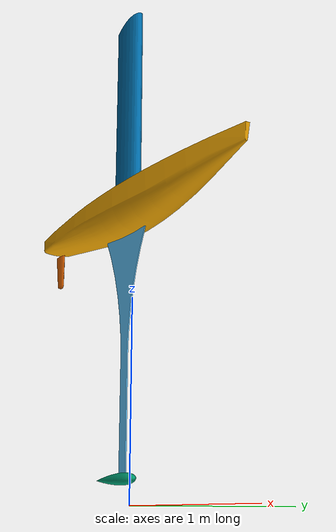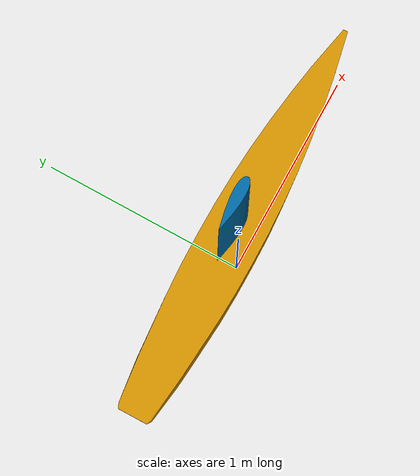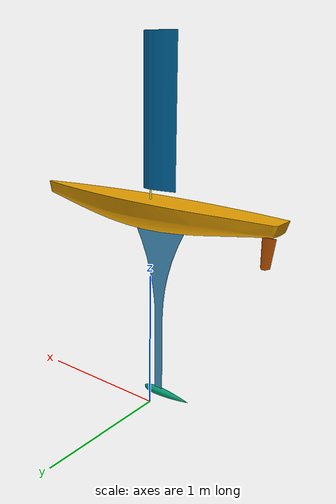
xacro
<?xml version="1.0"?>

<robot name="codfather" xmlns:xacro="http://www.ros.org/wiki/xacro">

	<xacro:property name="body_mass" value="8" />
	<!-- TODO figure out what this should be, I have no idea -->
	<xacro:property name="body_water_displaced_mass" value="100" />
	<xacro:property name="scale" value="1" />

	<xacro:arg name="windType" default="global" />
	<xacro:arg name="waterType" default="global" />
	<xacro:property name="windType" value="$(arg windType)" />
	<xacro:property name="waterType" value="$(arg waterType)" />
	<xacro:property name="windType" value="global" />

	<!-- Defining sail model -->
	<link name="body">
		<inertial>
			<origin rpy="0 0 0" xyz="-0.073357 0.000076 1.474309" />
			<mass value="8" />
			<inertia ixx="0.05528877352368592" ixy="0.0" iyy="1.516807268007787" ixz="0.014795587280986374" iyz="0.0" izz="1.5313432835820897" />
		</inertial>

		<collision name="collision">
			<geometry>
				<mesh filename="package://usv_sim/meshes/codfather/deck_hull_colored.obj" scale="1 1 1" />
			</geometry>
			<origin rpy="0 0 0" xyz="0 0 1.4478" />
		</collision>

		<visual name="visual">
			<geometry>
				<mesh filename="package://usv_sim/meshes/codfather/deck_hull_colored.obj" scale="1 1 1" />
			</geometry>
			<origin rpy="0 0 0" xyz="0 0 1.4478" />
		</visual>

		<buoyancy>
			<compensation>${body_water_displaced_mass/body_mass}</compensation>
			<origin xyz="${0.35*scale} ${0.44*scale} ${-0.15*scale}" />
			<limit radius="0.1" />
			<damping rpy="20 20 20" xyz="20 40 50" />
			<windVelocity>${windType}</windVelocity>
			<frontal_area>0.04</frontal_area>
			<lateral_area>0.06</lateral_area>
			<lateral_length>1.2</lateral_length>
			<waterVelocity>${waterType}</waterVelocity>
		</buoyancy>
	</link>

	<link name="keel">
		<inertial>
			<origin rpy="0 0 0" xyz="-0.0762 0 0.975963" />
			<mass value="2.75" />
			<inertia ixx="0.357177734375" ixy="0.0" iyy="0.373291015625" ixz="0.0" iyz="0.0" izz="0.01611328125" />
		</inertial>

		<visual name="keel_visual">
			<geometry>
				<mesh filename="package://usv_sim/meshes/codfather/keel_colored.obj" scale="1 1 1" />
			</geometry>
			<origin rpy="0 0 0" xyz="-0.0762 0 0.7648" />
		</visual>

		<collision name="keel_collision">
			<geometry>
				<mesh filename="package://usv_sim/meshes/codfather/keel_colored.obj" scale="1 1 1" />
			</geometry>
			<origin rpy="0 0 0" xyz="-0.0762 0 0.7648" />
		</collision>
	</link>

	<link name="ballast">
		<inertial>
			<origin rpy="0 0 0" xyz="-0.179481 -0.000115 0.097428" />
			<mass value="2.2" />
			<inertia ixx="0.0007085242765957447" ixy="-4.015390070921986e-08" iyy="0.013527595578652482" ixz="2.5175918439716314e-07" iyz="-1.4763794326241135e-08" izz="0.013527072944468085" />
		</inertial>

		<visual name="ballast_visual">
			<geometry>
				<mesh filename="package://usv_sim/meshes/codfather/ballast_colored.obj" scale="1 1 1" />
			</geometry>
			<origin rpy="0 0 0" xyz="-0.225 0 0.0974" />
		</visual>

		<collision name="ballast_collision">
			<geometry>
				<mesh filename="package://usv_sim/meshes/codfather/ballast_colored.obj" scale="1 1 1" />
			</geometry>
			<origin rpy="0 0 0" xyz="-0.225 0 0.0974" />
		</collision>
	</link>

	<link name="mast">
		<inertial>
			<origin rpy="0 0 0" xyz="-0.000000 -0.000013 0.000355" />
			<mass value="1" />
			<inertia ixx="0.09072859154929577" ixy="0.0" iyy="0.09072929577464789" ixz="-1.5492957746478874e-07" iyz="-1.408450704225352e-07" izz="4.9999999999999996e-05" />
		</inertial>

		<visual name="mast_visual">
			<geometry>
				<mesh filename="package://usv_sim/meshes/codfather/mast_colored.obj" scale="1 1 1" />
			</geometry>
			<origin rpy="0 0 0" xyz="0 0 0.5202" />
		</visual>

		<collision name="mast_collision">
			<geometry>
				<mesh filename="package://usv_sim/meshes/codfather/mast_colored.obj" scale="1 1 1" />
			</geometry>
			<origin rpy="0 0 0" xyz="0 0 0.5202" />
		</collision>
	</link>

	<link name="sail">
		<inertial>
			<origin rpy="0 0 0" xyz="-0.022806 -0.000095 0.6726" />
			<mass value="1" />
			<inertia ixx="0.08199047329482112" ixy="0.0" iyy="0.08543630282760717" ixz="0.0" iyz="0.0" izz="0.00385122124252559" />
		</inertial>

		<collision name="sail_collision">
			<geometry>
				<mesh filename="package://usv_sim/meshes/codfather/sail_colored.obj" scale="1 1 1" />
			</geometry>
			<origin rpy="0 0 3.1415926535897932" xyz="0 0 0.6726" />
		</collision>

		<visual name="sail_visual">
			<geometry>
				<mesh filename="package://usv_sim/meshes/codfather/sail_colored.obj" scale="1 1 1" />
			</geometry>
			<origin rpy="0 0 3.1415926535897932" xyz="0 0 0.6726" />
		</visual>
	</link>

	<link name="axle">

		<inertial>
			<origin rpy="0 0 0" xyz="-0.03 0 -0.035" />
			<mass value="0.5" />
			<inertia ixx="0.0015580802136752137" ixy="-1.7161266666666664e-05" iyy="0.0017239371367521368" ixz="0.00010010581196581196" iyz="1.0223873504273504e-05" izz="0.0001771534829059829" />
		</inertial>

		<collision name="rudder_collision">
			<geometry>
				<mesh filename="package://usv_sim/meshes/codfather/rudder_colored.obj" scale="1 1 1" />
			</geometry>
			<origin rpy="0 0 0" xyz="0 0 -0.0508" />
		</collision>

		<visual name="rudder_visual">
			<geometry>
				<mesh filename="package://usv_sim/meshes/codfather/rudder_colored.obj" scale="1 1 1" />
			</geometry>
			<origin rpy="0 0 0" xyz="0 0 -0.0508" />
		</visual>
	</link>

	<joint name="sail_joint" type="revolute">
		<parent link="body" />
		<child link="mast" />
		<origin rpy="0 0 0" xyz="0 0 1.4478" />
		<dynamics damping="1.0" />
		<axis xyz="0 0 1" />
		<limit effort="100" velocity="70" lower="-3.1415926535897932" upper="3.1415926535897932" />
	</joint>

	<joint name="rudder_joint" type="revolute">
		<parent link="body" />
		<child link="axle" />
		<origin rpy="0 0 0" xyz="-0.894724 0 1.3970" />
		<dynamics damping="1.0" />
		<axis xyz="0 0 1" />
		<limit effort="100" lower="-1.5707963267948966" upper="1.5707963267948966" velocity="5" />
	</joint>

	<joint type="fixed" name="keel_connection">
		<origin rpy="0 0 0" xyz="0 0 0" />
		<child link="keel" />
		<parent link="body" />
	</joint>

	<joint type="fixed" name="ballast_connection">
		<origin rpy="0 0 0" xyz="0.0762 0 0.0254" />
		<child link="ballast" />
		<parent link="keel" />
	</joint>

	<joint type="fixed" name="sail_connection">
		<origin rpy="0 0 0" xyz="-0.0762 0 0" />
		<child link="sail" />
		<parent link="mast" />
	</joint>

	<!-- Plugin list -->
	<gazebo>

		<plugin name="usv_sail_plugin" filename="libfoil_dynamics_plugin.so">
			<link_type>sail</link_type>
			<a0>0</a0>
			<cla>3.0</cla>
			<cda>3.0</cda>
			<cma>-1.8</cma>
			<alpha_stall>0.785</alpha_stall>
			<cla_stall>-3.85</cla_stall>
			<cda_stall>-0.9233984055</cda_stall>
			<cma_stall>0</cma_stall>
			<cp>0 0 0</cp>
			<joint_name>sail_joint</joint_name>
			<area>1.44</area>
			<fluid_density>1.2041</fluid_density>
			<forward>-1 0 0</forward>
			<upward>0 1 0</upward>
			<link_name>sail</link_name>
			<fluidVelocity>${windType}</fluidVelocity>
		</plugin>

		<plugin name="usv_sail_plugin" filename="libfoil_dynamics_plugin.so">
			<link_type>keel</link_type>
			<a0>0</a0>
			<cla>10.0</cla>
			<cda>8.0</cda>
			<alpha_stall>0.785</alpha_stall>
			<cla_stall>-10.0</cla_stall>
			<cda_stall>-5.0</cda_stall>
			<cp>0 0 0</cp>
			<area>1.0</area>
			<fluid_density>1000</fluid_density>
			<forward>1 0 0</forward>
			<upward>0 1 0</upward>
			<link_name>keel</link_name>
			<fluidVelocity>${waterType}</fluidVelocity>
		</plugin>

		<plugin name="usv_sail_plugin" filename="libfoil_dynamics_plugin.so">
			<link_type>rudder</link_type>
			<a0>0</a0>
			<cla>0.8</cla>
			<cda>0.3</cda>
			<alpha_stall>0.785</alpha_stall>
			<cla_stall>-0.85</cla_stall>
			<cda_stall>-0.3233984055</cda_stall>

			<cp>0 0 0</cp>
			<area>1</area>
			<fluid_density>1000</fluid_density>
			<forward>1 0 0</forward>
			<upward>0 1 0</upward>
			<link_name>rudder</link_name>
			<fluidVelocity>${waterType}</fluidVelocity>
		</plugin>

		<plugin name="freefloating_gazebo_control" filename="libfreefloating_gazebo_control.so">
			<switchService>switch</switchService>
			<updateRate>100</updateRate>
			<link>body</link>
		</plugin>

	</gazebo>

</robot>
